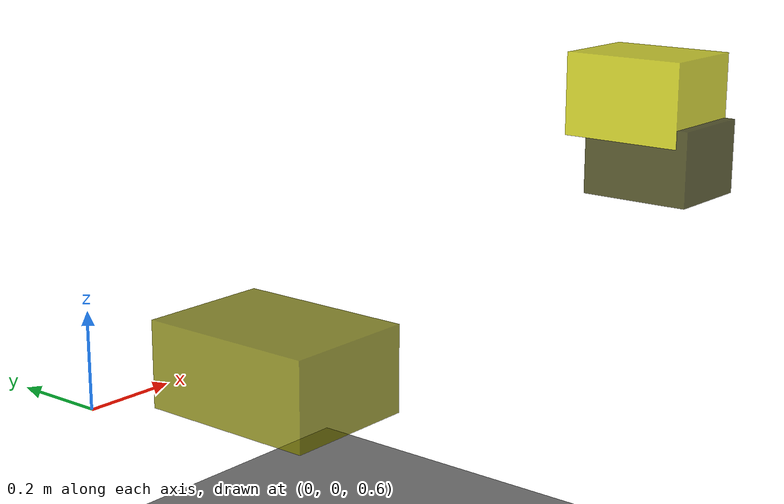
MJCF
<?xml version="1.0"?>
<mujoco model="obstacle_scene">
  <compiler angle="radian" coordinate="local"/>
  <option timestep="0.001" gravity="0 0 -9.81"/>

  <asset>
    <material name="obstacle_mat" rgba="0.8 0.8 0.0 0.8"/>
    <material name="ground_mat" rgba="0.5 0.5 0.5 1"/>
  </asset>

  <worldbody>
    <!-- Ground plane -->
    <geom name="ground" type="plane" size="3 3 0.1" material="ground_mat"/>

    <!-- Obstacles -->
    <body name="obstacle_0" pos="0.875627 -0.731594 1.063216">
      <geom name="obs_0" type="box" size="0.095749 0.113417 0.075207" rgba="0.2 0.2 0.0 0.8"/>
    </body>
    <body name="obstacle_1" pos="0.330261 -0.182113 0.641928">
      <geom name="obs_1" type="box" size="0.149593 0.201480 0.094428" rgba="0.5 0.5 0.0 0.8"/>
    </body>
    <body name="obstacle_2" pos="0.876800 -0.695987 1.185571">
      <geom name="obs_2" type="box" size="0.098479 0.125667 0.083852" rgba="0.8 0.8 0.0 0.8"/>
    </body>
  </worldbody>
</mujoco>
